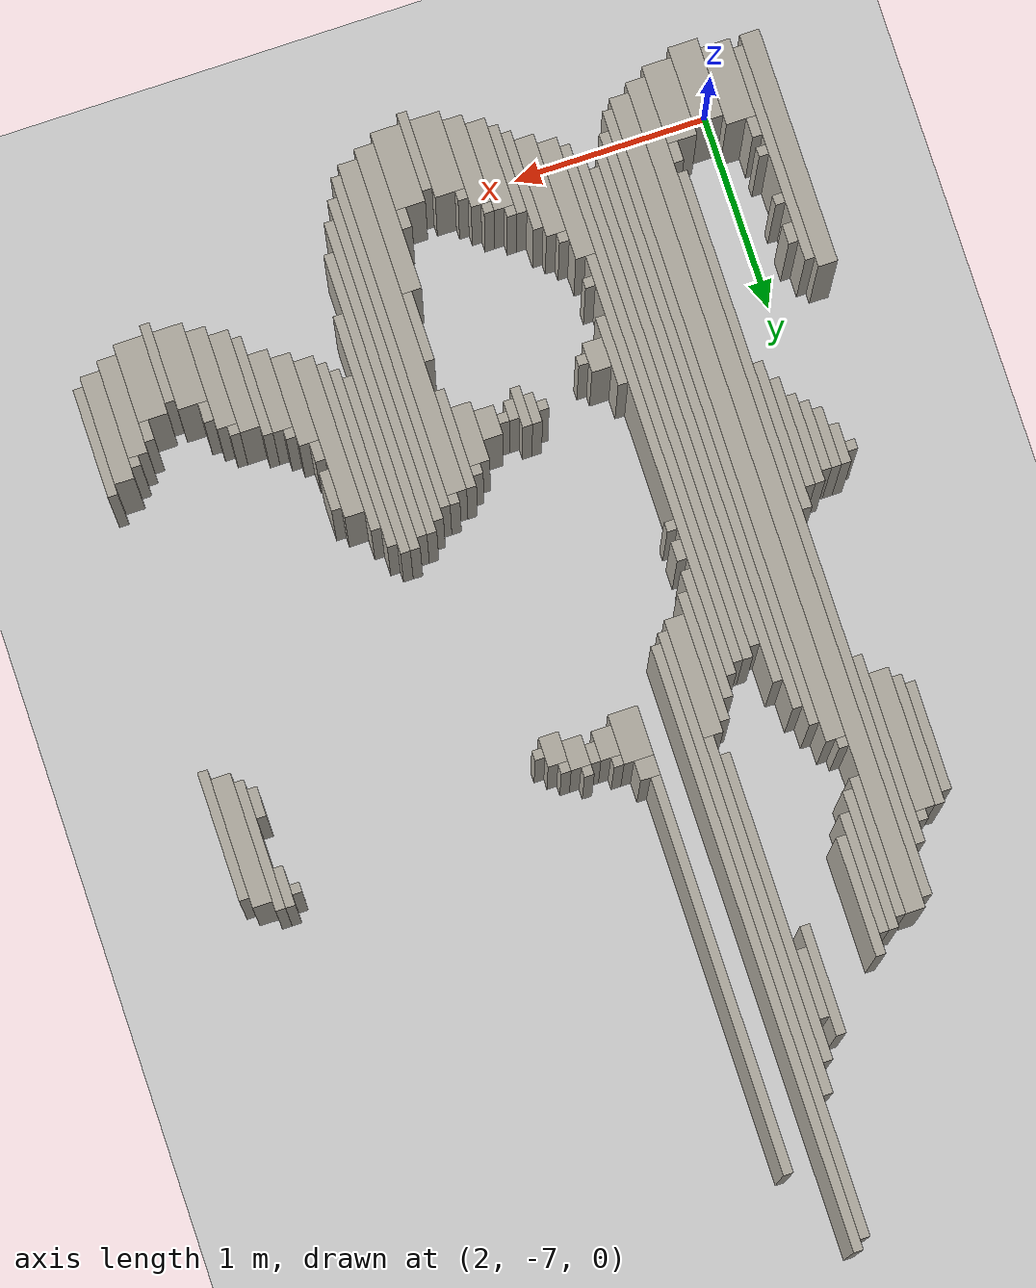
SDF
<sdf version="1.6">
 <world name="fr079_office">
  <include><uri>model://sun</uri></include>
  <include><uri>model://ground_plane</uri></include>
  <model name="fr079_office_walls">
   <static>true</static>
   <link name="w0017">
    <pose>3.477 -7.106 0.500 0 0 0</pose>
    <collision name="c"><geometry><box><size>0.050 0.400 1.000</size></box></geometry></collision>
    <visual name="v">
     <geometry><box><size>0.050 0.400 1.000</size></box></geometry>
     <material><ambient>0.68 0.66 0.62 1</ambient><diffuse>0.68 0.66 0.62 1</diffuse></material>
    </visual>
   </link>
   <link name="w0040">
    <pose>3.377 -7.056 0.500 0 0 0</pose>
    <collision name="c"><geometry><box><size>0.150 0.400 1.000</size></box></geometry></collision>
    <visual name="v">
     <geometry><box><size>0.150 0.400 1.000</size></box></geometry>
     <material><ambient>0.68 0.66 0.62 1</ambient><diffuse>0.68 0.66 0.62 1</diffuse></material>
    </visual>
   </link>
   <link name="w0041">
    <pose>3.577 -7.056 0.500 0 0 0</pose>
    <collision name="c"><geometry><box><size>0.150 0.400 1.000</size></box></geometry></collision>
    <visual name="v">
     <geometry><box><size>0.150 0.400 1.000</size></box></geometry>
     <material><ambient>0.68 0.66 0.62 1</ambient><diffuse>0.68 0.66 0.62 1</diffuse></material>
    </visual>
   </link>
   <link name="w0063">
    <pose>2.077 -7.006 0.500 0 0 0</pose>
    <collision name="c"><geometry><box><size>0.150 0.400 1.000</size></box></geometry></collision>
    <visual name="v">
     <geometry><box><size>0.150 0.400 1.000</size></box></geometry>
     <material><ambient>0.68 0.66 0.62 1</ambient><diffuse>0.68 0.66 0.62 1</diffuse></material>
    </visual>
   </link>
   <link name="w0064">
    <pose>3.252 -6.981 0.500 0 0 0</pose>
    <collision name="c"><geometry><box><size>0.100 0.450 1.000</size></box></geometry></collision>
    <visual name="v">
     <geometry><box><size>0.100 0.450 1.000</size></box></geometry>
     <material><ambient>0.68 0.66 0.62 1</ambient><diffuse>0.68 0.66 0.62 1</diffuse></material>
    </visual>
   </link>
   <link name="w0065">
    <pose>3.702 -6.831 0.500 0 0 0</pose>
    <collision name="c"><geometry><box><size>0.100 0.750 1.000</size></box></geometry></collision>
    <visual name="v">
     <geometry><box><size>0.100 0.750 1.000</size></box></geometry>
     <material><ambient>0.68 0.66 0.62 1</ambient><diffuse>0.68 0.66 0.62 1</diffuse></material>
    </visual>
   </link>
   <link name="w0087">
    <pose>1.752 -6.556 0.500 0 0 0</pose>
    <collision name="c"><geometry><box><size>0.100 1.200 1.000</size></box></geometry></collision>
    <visual name="v">
     <geometry><box><size>0.100 1.200 1.000</size></box></geometry>
     <material><ambient>0.68 0.66 0.62 1</ambient><diffuse>0.68 0.66 0.62 1</diffuse></material>
    </visual>
   </link>
   <link name="w0088">
    <pose>1.927 -6.956 0.500 0 0 0</pose>
    <collision name="c"><geometry><box><size>0.150 0.400 1.000</size></box></geometry></collision>
    <visual name="v">
     <geometry><box><size>0.150 0.400 1.000</size></box></geometry>
     <material><ambient>0.68 0.66 0.62 1</ambient><diffuse>0.68 0.66 0.62 1</diffuse></material>
    </visual>
   </link>
   <link name="w0089">
    <pose>2.227 -6.956 0.500 0 0 0</pose>
    <collision name="c"><geometry><box><size>0.150 0.400 1.000</size></box></geometry></collision>
    <visual name="v">
     <geometry><box><size>0.150 0.400 1.000</size></box></geometry>
     <material><ambient>0.68 0.66 0.62 1</ambient><diffuse>0.68 0.66 0.62 1</diffuse></material>
    </visual>
   </link>
   <link name="w0090">
    <pose>3.152 -6.931 0.500 0 0 0</pose>
    <collision name="c"><geometry><box><size>0.100 0.450 1.000</size></box></geometry></collision>
    <visual name="v">
     <geometry><box><size>0.100 0.450 1.000</size></box></geometry>
     <material><ambient>0.68 0.66 0.62 1</ambient><diffuse>0.68 0.66 0.62 1</diffuse></material>
    </visual>
   </link>
   <link name="w0091">
    <pose>3.802 -6.306 0.500 0 0 0</pose>
    <collision name="c"><geometry><box><size>0.100 1.700 1.000</size></box></geometry></collision>
    <visual name="v">
     <geometry><box><size>0.100 1.700 1.000</size></box></geometry>
     <material><ambient>0.68 0.66 0.62 1</ambient><diffuse>0.68 0.66 0.62 1</diffuse></material>
    </visual>
   </link>
   <link name="w0111">
    <pose>1.827 -6.556 0.500 0 0 0</pose>
    <collision name="c"><geometry><box><size>0.050 1.100 1.000</size></box></geometry></collision>
    <visual name="v">
     <geometry><box><size>0.050 1.100 1.000</size></box></geometry>
     <material><ambient>0.68 0.66 0.62 1</ambient><diffuse>0.68 0.66 0.62 1</diffuse></material>
    </visual>
   </link>
   <link name="w0112">
    <pose>2.352 -4.981 0.500 0 0 0</pose>
    <collision name="c"><geometry><box><size>0.100 4.250 1.000</size></box></geometry></collision>
    <visual name="v">
     <geometry><box><size>0.100 4.250 1.000</size></box></geometry>
     <material><ambient>0.68 0.66 0.62 1</ambient><diffuse>0.68 0.66 0.62 1</diffuse></material>
    </visual>
   </link>
   <link name="w0113">
    <pose>3.077 -6.881 0.500 0 0 0</pose>
    <collision name="c"><geometry><box><size>0.050 0.450 1.000</size></box></geometry></collision>
    <visual name="v">
     <geometry><box><size>0.050 0.450 1.000</size></box></geometry>
     <material><ambient>0.68 0.66 0.62 1</ambient><diffuse>0.68 0.66 0.62 1</diffuse></material>
    </visual>
   </link>
   <link name="w0114">
    <pose>3.877 -6.256 0.500 0 0 0</pose>
    <collision name="c"><geometry><box><size>0.050 1.700 1.000</size></box></geometry></collision>
    <visual name="v">
     <geometry><box><size>0.050 1.700 1.000</size></box></geometry>
     <material><ambient>0.68 0.66 0.62 1</ambient><diffuse>0.68 0.66 0.62 1</diffuse></material>
    </visual>
   </link>
   <link name="w0129">
    <pose>2.452 -5.406 0.500 0 0 0</pose>
    <collision name="c"><geometry><box><size>0.100 3.300 1.000</size></box></geometry></collision>
    <visual name="v">
     <geometry><box><size>0.100 3.300 1.000</size></box></geometry>
     <material><ambient>0.68 0.66 0.62 1</ambient><diffuse>0.68 0.66 0.62 1</diffuse></material>
    </visual>
   </link>
   <link name="w0130">
    <pose>3.027 -6.806 0.500 0 0 0</pose>
    <collision name="c"><geometry><box><size>0.050 0.500 1.000</size></box></geometry></collision>
    <visual name="v">
     <geometry><box><size>0.050 0.500 1.000</size></box></geometry>
     <material><ambient>0.68 0.66 0.62 1</ambient><diffuse>0.68 0.66 0.62 1</diffuse></material>
    </visual>
   </link>
   <link name="w0143">
    <pose>2.527 -5.431 0.500 0 0 0</pose>
    <collision name="c"><geometry><box><size>0.050 3.150 1.000</size></box></geometry></collision>
    <visual name="v">
     <geometry><box><size>0.050 3.150 1.000</size></box></geometry>
     <material><ambient>0.68 0.66 0.62 1</ambient><diffuse>0.68 0.66 0.62 1</diffuse></material>
    </visual>
   </link>
   <link name="w0144">
    <pose>2.952 -6.756 0.500 0 0 0</pose>
    <collision name="c"><geometry><box><size>0.100 0.500 1.000</size></box></geometry></collision>
    <visual name="v">
     <geometry><box><size>0.100 0.500 1.000</size></box></geometry>
     <material><ambient>0.68 0.66 0.62 1</ambient><diffuse>0.68 0.66 0.62 1</diffuse></material>
    </visual>
   </link>
   <link name="w0145">
    <pose>3.927 -6.181 0.500 0 0 0</pose>
    <collision name="c"><geometry><box><size>0.050 1.650 1.000</size></box></geometry></collision>
    <visual name="v">
     <geometry><box><size>0.050 1.650 1.000</size></box></geometry>
     <material><ambient>0.68 0.66 0.62 1</ambient><diffuse>0.68 0.66 0.62 1</diffuse></material>
    </visual>
   </link>
   <link name="w0155">
    <pose>2.852 -6.656 0.500 0 0 0</pose>
    <collision name="c"><geometry><box><size>0.100 0.600 1.000</size></box></geometry></collision>
    <visual name="v">
     <geometry><box><size>0.100 0.600 1.000</size></box></geometry>
     <material><ambient>0.68 0.66 0.62 1</ambient><diffuse>0.68 0.66 0.62 1</diffuse></material>
    </visual>
   </link>
   <link name="w0166">
    <pose>2.577 -5.431 0.500 0 0 0</pose>
    <collision name="c"><geometry><box><size>0.050 2.950 1.000</size></box></geometry></collision>
    <visual name="v">
     <geometry><box><size>0.050 2.950 1.000</size></box></geometry>
     <material><ambient>0.68 0.66 0.62 1</ambient><diffuse>0.68 0.66 0.62 1</diffuse></material>
    </visual>
   </link>
   <link name="w0167">
    <pose>2.777 -5.581 0.500 0 0 0</pose>
    <collision name="c"><geometry><box><size>0.050 2.650 1.000</size></box></geometry></collision>
    <visual name="v">
     <geometry><box><size>0.050 2.650 1.000</size></box></geometry>
     <material><ambient>0.68 0.66 0.62 1</ambient><diffuse>0.68 0.66 0.62 1</diffuse></material>
    </visual>
   </link>
   <link name="w0168">
    <pose>3.977 -6.106 0.500 0 0 0</pose>
    <collision name="c"><geometry><box><size>0.050 1.600 1.000</size></box></geometry></collision>
    <visual name="v">
     <geometry><box><size>0.050 1.600 1.000</size></box></geometry>
     <material><ambient>0.68 0.66 0.62 1</ambient><diffuse>0.68 0.66 0.62 1</diffuse></material>
    </visual>
   </link>
   <link name="w0189">
    <pose>3.327 -6.831 0.500 0 0 0</pose>
    <collision name="c"><geometry><box><size>0.050 0.050 1.000</size></box></geometry></collision>
    <visual name="v">
     <geometry><box><size>0.050 0.050 1.000</size></box></geometry>
     <material><ambient>0.68 0.66 0.62 1</ambient><diffuse>0.68 0.66 0.62 1</diffuse></material>
    </visual>
   </link>
   <link name="w0190">
    <pose>3.627 -6.806 0.500 0 0 0</pose>
    <collision name="c"><geometry><box><size>0.050 0.100 1.000</size></box></geometry></collision>
    <visual name="v">
     <geometry><box><size>0.050 0.100 1.000</size></box></geometry>
     <material><ambient>0.68 0.66 0.62 1</ambient><diffuse>0.68 0.66 0.62 1</diffuse></material>
    </visual>
   </link>
   <link name="w0203">
    <pose>2.627 -5.456 0.500 0 0 0</pose>
    <collision name="c"><geometry><box><size>0.050 2.700 1.000</size></box></geometry></collision>
    <visual name="v">
     <geometry><box><size>0.050 2.700 1.000</size></box></geometry>
     <material><ambient>0.68 0.66 0.62 1</ambient><diffuse>0.68 0.66 0.62 1</diffuse></material>
    </visual>
   </link>
   <link name="w0204">
    <pose>2.727 -5.531 0.500 0 0 0</pose>
    <collision name="c"><geometry><box><size>0.050 2.550 1.000</size></box></geometry></collision>
    <visual name="v">
     <geometry><box><size>0.050 2.550 1.000</size></box></geometry>
     <material><ambient>0.68 0.66 0.62 1</ambient><diffuse>0.68 0.66 0.62 1</diffuse></material>
    </visual>
   </link>
   <link name="w0220">
    <pose>1.877 -6.706 0.500 0 0 0</pose>
    <collision name="c"><geometry><box><size>0.050 0.100 1.000</size></box></geometry></collision>
    <visual name="v">
     <geometry><box><size>0.050 0.100 1.000</size></box></geometry>
     <material><ambient>0.68 0.66 0.62 1</ambient><diffuse>0.68 0.66 0.62 1</diffuse></material>
    </visual>
   </link>
   <link name="w0221">
    <pose>2.277 -6.706 0.500 0 0 0</pose>
    <collision name="c"><geometry><box><size>0.050 0.100 1.000</size></box></geometry></collision>
    <visual name="v">
     <geometry><box><size>0.050 0.100 1.000</size></box></geometry>
     <material><ambient>0.68 0.66 0.62 1</ambient><diffuse>0.68 0.66 0.62 1</diffuse></material>
    </visual>
   </link>
   <link name="w0222">
    <pose>2.677 -5.531 0.500 0 0 0</pose>
    <collision name="c"><geometry><box><size>0.050 2.450 1.000</size></box></geometry></collision>
    <visual name="v">
     <geometry><box><size>0.050 2.450 1.000</size></box></geometry>
     <material><ambient>0.68 0.66 0.62 1</ambient><diffuse>0.68 0.66 0.62 1</diffuse></material>
    </visual>
   </link>
   <link name="w0223">
    <pose>3.227 -6.731 0.500 0 0 0</pose>
    <collision name="c"><geometry><box><size>0.050 0.050 1.000</size></box></geometry></collision>
    <visual name="v">
     <geometry><box><size>0.050 0.050 1.000</size></box></geometry>
     <material><ambient>0.68 0.66 0.62 1</ambient><diffuse>0.68 0.66 0.62 1</diffuse></material>
    </visual>
   </link>
   <link name="w0224">
    <pose>4.027 -6.031 0.500 0 0 0</pose>
    <collision name="c"><geometry><box><size>0.050 1.450 1.000</size></box></geometry></collision>
    <visual name="v">
     <geometry><box><size>0.050 1.450 1.000</size></box></geometry>
     <material><ambient>0.68 0.66 0.62 1</ambient><diffuse>0.68 0.66 0.62 1</diffuse></material>
    </visual>
   </link>
   <link name="w0238">
    <pose>3.127 -6.681 0.500 0 0 0</pose>
    <collision name="c"><geometry><box><size>0.050 0.050 1.000</size></box></geometry></collision>
    <visual name="v">
     <geometry><box><size>0.050 0.050 1.000</size></box></geometry>
     <material><ambient>0.68 0.66 0.62 1</ambient><diffuse>0.68 0.66 0.62 1</diffuse></material>
    </visual>
   </link>
   <link name="w0239">
    <pose>4.977 -6.506 0.500 0 0 0</pose>
    <collision name="c"><geometry><box><size>0.050 0.400 1.000</size></box></geometry></collision>
    <visual name="v">
     <geometry><box><size>0.050 0.400 1.000</size></box></geometry>
     <material><ambient>0.68 0.66 0.62 1</ambient><diffuse>0.68 0.66 0.62 1</diffuse></material>
    </visual>
   </link>
   <link name="w0248">
    <pose>4.877 -6.456 0.500 0 0 0</pose>
    <collision name="c"><geometry><box><size>0.150 0.400 1.000</size></box></geometry></collision>
    <visual name="v">
     <geometry><box><size>0.150 0.400 1.000</size></box></geometry>
     <material><ambient>0.68 0.66 0.62 1</ambient><diffuse>0.68 0.66 0.62 1</diffuse></material>
    </visual>
   </link>
   <link name="w0249">
    <pose>5.077 -6.456 0.500 0 0 0</pose>
    <collision name="c"><geometry><box><size>0.150 0.400 1.000</size></box></geometry></collision>
    <visual name="v">
     <geometry><box><size>0.150 0.400 1.000</size></box></geometry>
     <material><ambient>0.68 0.66 0.62 1</ambient><diffuse>0.68 0.66 0.62 1</diffuse></material>
    </visual>
   </link>
   <link name="w0261">
    <pose>1.877 -6.581 0.500 0 0 0</pose>
    <collision name="c"><geometry><box><size>0.050 0.050 1.000</size></box></geometry></collision>
    <visual name="v">
     <geometry><box><size>0.050 0.050 1.000</size></box></geometry>
     <material><ambient>0.68 0.66 0.62 1</ambient><diffuse>0.68 0.66 0.62 1</diffuse></material>
    </visual>
   </link>
   <link name="w0262">
    <pose>2.277 -4.756 0.500 0 0 0</pose>
    <collision name="c"><geometry><box><size>0.050 3.700 1.000</size></box></geometry></collision>
    <visual name="v">
     <geometry><box><size>0.050 3.700 1.000</size></box></geometry>
     <material><ambient>0.68 0.66 0.62 1</ambient><diffuse>0.68 0.66 0.62 1</diffuse></material>
    </visual>
   </link>
   <link name="w0263">
    <pose>4.752 -6.356 0.500 0 0 0</pose>
    <collision name="c"><geometry><box><size>0.100 0.500 1.000</size></box></geometry></collision>
    <visual name="v">
     <geometry><box><size>0.100 0.500 1.000</size></box></geometry>
     <material><ambient>0.68 0.66 0.62 1</ambient><diffuse>0.68 0.66 0.62 1</diffuse></material>
    </visual>
   </link>
   <link name="w0264">
    <pose>5.202 -6.356 0.500 0 0 0</pose>
    <collision name="c"><geometry><box><size>0.100 0.500 1.000</size></box></geometry></collision>
    <visual name="v">
     <geometry><box><size>0.100 0.500 1.000</size></box></geometry>
     <material><ambient>0.68 0.66 0.62 1</ambient><diffuse>0.68 0.66 0.62 1</diffuse></material>
    </visual>
   </link>
   <link name="w0274">
    <pose>4.652 -6.306 0.500 0 0 0</pose>
    <collision name="c"><geometry><box><size>0.100 0.500 1.000</size></box></geometry></collision>
    <visual name="v">
     <geometry><box><size>0.100 0.500 1.000</size></box></geometry>
     <material><ambient>0.68 0.66 0.62 1</ambient><diffuse>0.68 0.66 0.62 1</diffuse></material>
    </visual>
   </link>
   <link name="w0275">
    <pose>5.302 -6.281 0.500 0 0 0</pose>
    <collision name="c"><geometry><box><size>0.100 0.550 1.000</size></box></geometry></collision>
    <visual name="v">
     <geometry><box><size>0.100 0.550 1.000</size></box></geometry>
     <material><ambient>0.68 0.66 0.62 1</ambient><diffuse>0.68 0.66 0.62 1</diffuse></material>
    </visual>
   </link>
   <link name="w0288">
    <pose>2.927 -6.481 0.500 0 0 0</pose>
    <collision name="c"><geometry><box><size>0.050 0.050 1.000</size></box></geometry></collision>
    <visual name="v">
     <geometry><box><size>0.050 0.050 1.000</size></box></geometry>
     <material><ambient>0.68 0.66 0.62 1</ambient><diffuse>0.68 0.66 0.62 1</diffuse></material>
    </visual>
   </link>
   <link name="w0289">
    <pose>4.577 -6.256 0.500 0 0 0</pose>
    <collision name="c"><geometry><box><size>0.050 0.500 1.000</size></box></geometry></collision>
    <visual name="v">
     <geometry><box><size>0.050 0.500 1.000</size></box></geometry>
     <material><ambient>0.68 0.66 0.62 1</ambient><diffuse>0.68 0.66 0.62 1</diffuse></material>
    </visual>
   </link>
   <link name="w0290">
    <pose>5.377 -6.231 0.500 0 0 0</pose>
    <collision name="c"><geometry><box><size>0.050 0.550 1.000</size></box></geometry></collision>
    <visual name="v">
     <geometry><box><size>0.050 0.550 1.000</size></box></geometry>
     <material><ambient>0.68 0.66 0.62 1</ambient><diffuse>0.68 0.66 0.62 1</diffuse></material>
    </visual>
   </link>
   <link name="w0305">
    <pose>3.727 -6.281 0.500 0 0 0</pose>
    <collision name="c"><geometry><box><size>0.050 0.350 1.000</size></box></geometry></collision>
    <visual name="v">
     <geometry><box><size>0.050 0.350 1.000</size></box></geometry>
     <material><ambient>0.68 0.66 0.62 1</ambient><diffuse>0.68 0.66 0.62 1</diffuse></material>
    </visual>
   </link>
   <link name="w0306">
    <pose>4.077 -5.856 0.500 0 0 0</pose>
    <collision name="c"><geometry><box><size>0.050 1.200 1.000</size></box></geometry></collision>
    <visual name="v">
     <geometry><box><size>0.050 1.200 1.000</size></box></geometry>
     <material><ambient>0.68 0.66 0.62 1</ambient><diffuse>0.68 0.66 0.62 1</diffuse></material>
    </visual>
   </link>
   <link name="w0325">
    <pose>4.502 -6.206 0.500 0 0 0</pose>
    <collision name="c"><geometry><box><size>0.100 0.400 1.000</size></box></geometry></collision>
    <visual name="v">
     <geometry><box><size>0.100 0.400 1.000</size></box></geometry>
     <material><ambient>0.68 0.66 0.62 1</ambient><diffuse>0.68 0.66 0.62 1</diffuse></material>
    </visual>
   </link>
   <link name="w0340">
    <pose>1.877 -6.331 0.500 0 0 0</pose>
    <collision name="c"><geometry><box><size>0.050 0.050 1.000</size></box></geometry></collision>
    <visual name="v">
     <geometry><box><size>0.050 0.050 1.000</size></box></geometry>
     <material><ambient>0.68 0.66 0.62 1</ambient><diffuse>0.68 0.66 0.62 1</diffuse></material>
    </visual>
   </link>
   <link name="w0341">
    <pose>2.827 -5.281 0.500 0 0 0</pose>
    <collision name="c"><geometry><box><size>0.050 2.150 1.000</size></box></geometry></collision>
    <visual name="v">
     <geometry><box><size>0.050 2.150 1.000</size></box></geometry>
     <material><ambient>0.68 0.66 0.62 1</ambient><diffuse>0.68 0.66 0.62 1</diffuse></material>
    </visual>
   </link>
   <link name="w0342">
    <pose>4.402 -6.131 0.500 0 0 0</pose>
    <collision name="c"><geometry><box><size>0.100 0.450 1.000</size></box></geometry></collision>
    <visual name="v">
     <geometry><box><size>0.100 0.450 1.000</size></box></geometry>
     <material><ambient>0.68 0.66 0.62 1</ambient><diffuse>0.68 0.66 0.62 1</diffuse></material>
    </visual>
   </link>
   <link name="w0356">
    <pose>4.302 -5.906 0.500 0 0 0</pose>
    <collision name="c"><geometry><box><size>0.100 0.800 1.000</size></box></geometry></collision>
    <visual name="v">
     <geometry><box><size>0.100 0.800 1.000</size></box></geometry>
     <material><ambient>0.68 0.66 0.62 1</ambient><diffuse>0.68 0.66 0.62 1</diffuse></material>
    </visual>
   </link>
   <link name="w0366">
    <pose>2.877 -6.231 0.500 0 0 0</pose>
    <collision name="c"><geometry><box><size>0.050 0.050 1.000</size></box></geometry></collision>
    <visual name="v">
     <geometry><box><size>0.050 0.050 1.000</size></box></geometry>
     <material><ambient>0.68 0.66 0.62 1</ambient><diffuse>0.68 0.66 0.62 1</diffuse></material>
    </visual>
   </link>
   <link name="w0367">
    <pose>4.227 -5.831 0.500 0 0 0</pose>
    <collision name="c"><geometry><box><size>0.050 0.850 1.000</size></box></geometry></collision>
    <visual name="v">
     <geometry><box><size>0.050 0.850 1.000</size></box></geometry>
     <material><ambient>0.68 0.66 0.62 1</ambient><diffuse>0.68 0.66 0.62 1</diffuse></material>
    </visual>
   </link>
   <link name="w0368">
    <pose>4.827 -6.206 0.500 0 0 0</pose>
    <collision name="c"><geometry><box><size>0.050 0.100 1.000</size></box></geometry></collision>
    <visual name="v">
     <geometry><box><size>0.050 0.100 1.000</size></box></geometry>
     <material><ambient>0.68 0.66 0.62 1</ambient><diffuse>0.68 0.66 0.62 1</diffuse></material>
    </visual>
   </link>
   <link name="w0369">
    <pose>5.127 -6.206 0.500 0 0 0</pose>
    <collision name="c"><geometry><box><size>0.050 0.100 1.000</size></box></geometry></collision>
    <visual name="v">
     <geometry><box><size>0.050 0.100 1.000</size></box></geometry>
     <material><ambient>0.68 0.66 0.62 1</ambient><diffuse>0.68 0.66 0.62 1</diffuse></material>
    </visual>
   </link>
   <link name="w0379">
    <pose>1.877 -6.156 0.500 0 0 0</pose>
    <collision name="c"><geometry><box><size>0.050 0.100 1.000</size></box></geometry></collision>
    <visual name="v">
     <geometry><box><size>0.050 0.100 1.000</size></box></geometry>
     <material><ambient>0.68 0.66 0.62 1</ambient><diffuse>0.68 0.66 0.62 1</diffuse></material>
    </visual>
   </link>
   <link name="w0380">
    <pose>4.177 -5.756 0.500 0 0 0</pose>
    <collision name="c"><geometry><box><size>0.050 0.900 1.000</size></box></geometry></collision>
    <visual name="v">
     <geometry><box><size>0.050 0.900 1.000</size></box></geometry>
     <material><ambient>0.68 0.66 0.62 1</ambient><diffuse>0.68 0.66 0.62 1</diffuse></material>
    </visual>
   </link>
   <link name="w0387">
    <pose>4.127 -5.706 0.500 0 0 0</pose>
    <collision name="c"><geometry><box><size>0.050 0.900 1.000</size></box></geometry></collision>
    <visual name="v">
     <geometry><box><size>0.050 0.900 1.000</size></box></geometry>
     <material><ambient>0.68 0.66 0.62 1</ambient><diffuse>0.68 0.66 0.62 1</diffuse></material>
    </visual>
   </link>
   <link name="w0398">
    <pose>4.727 -6.081 0.500 0 0 0</pose>
    <collision name="c"><geometry><box><size>0.050 0.050 1.000</size></box></geometry></collision>
    <visual name="v">
     <geometry><box><size>0.050 0.050 1.000</size></box></geometry>
     <material><ambient>0.68 0.66 0.62 1</ambient><diffuse>0.68 0.66 0.62 1</diffuse></material>
    </visual>
   </link>
   <link name="w0399">
    <pose>5.227 -6.081 0.500 0 0 0</pose>
    <collision name="c"><geometry><box><size>0.050 0.050 1.000</size></box></geometry></collision>
    <visual name="v">
     <geometry><box><size>0.050 0.050 1.000</size></box></geometry>
     <material><ambient>0.68 0.66 0.62 1</ambient><diffuse>0.68 0.66 0.62 1</diffuse></material>
    </visual>
   </link>
   <link name="w0413">
    <pose>2.877 -5.881 0.500 0 0 0</pose>
    <collision name="c"><geometry><box><size>0.050 0.350 1.000</size></box></geometry></collision>
    <visual name="v">
     <geometry><box><size>0.050 0.350 1.000</size></box></geometry>
     <material><ambient>0.68 0.66 0.62 1</ambient><diffuse>0.68 0.66 0.62 1</diffuse></material>
    </visual>
   </link>
   <link name="w0425">
    <pose>4.477 -5.981 0.500 0 0 0</pose>
    <collision name="c"><geometry><box><size>0.050 0.050 1.000</size></box></geometry></collision>
    <visual name="v">
     <geometry><box><size>0.050 0.050 1.000</size></box></geometry>
     <material><ambient>0.68 0.66 0.62 1</ambient><diffuse>0.68 0.66 0.62 1</diffuse></material>
    </visual>
   </link>
   <link name="w0439">
    <pose>2.952 -5.881 0.500 0 0 0</pose>
    <collision name="c"><geometry><box><size>0.100 0.150 1.000</size></box></geometry></collision>
    <visual name="v">
     <geometry><box><size>0.100 0.150 1.000</size></box></geometry>
     <material><ambient>0.68 0.66 0.62 1</ambient><diffuse>0.68 0.66 0.62 1</diffuse></material>
    </visual>
   </link>
   <link name="w0440">
    <pose>3.727 -5.706 0.500 0 0 0</pose>
    <collision name="c"><geometry><box><size>0.050 0.500 1.000</size></box></geometry></collision>
    <visual name="v">
     <geometry><box><size>0.050 0.500 1.000</size></box></geometry>
     <material><ambient>0.68 0.66 0.62 1</ambient><diffuse>0.68 0.66 0.62 1</diffuse></material>
    </visual>
   </link>
   <link name="w0456">
    <pose>3.027 -5.881 0.500 0 0 0</pose>
    <collision name="c"><geometry><box><size>0.050 0.050 1.000</size></box></geometry></collision>
    <visual name="v">
     <geometry><box><size>0.050 0.050 1.000</size></box></geometry>
     <material><ambient>0.68 0.66 0.62 1</ambient><diffuse>0.68 0.66 0.62 1</diffuse></material>
    </visual>
   </link>
   <link name="w0457">
    <pose>4.377 -5.856 0.500 0 0 0</pose>
    <collision name="c"><geometry><box><size>0.050 0.100 1.000</size></box></geometry></collision>
    <visual name="v">
     <geometry><box><size>0.050 0.100 1.000</size></box></geometry>
     <material><ambient>0.68 0.66 0.62 1</ambient><diffuse>0.68 0.66 0.62 1</diffuse></material>
    </visual>
   </link>
   <link name="w0470">
    <pose>3.377 -5.756 0.500 0 0 0</pose>
    <collision name="c"><geometry><box><size>0.050 0.200 1.000</size></box></geometry></collision>
    <visual name="v">
     <geometry><box><size>0.050 0.200 1.000</size></box></geometry>
     <material><ambient>0.68 0.66 0.62 1</ambient><diffuse>0.68 0.66 0.62 1</diffuse></material>
    </visual>
   </link>
   <link name="w0471">
    <pose>3.652 -5.706 0.500 0 0 0</pose>
    <collision name="c"><geometry><box><size>0.100 0.300 1.000</size></box></geometry></collision>
    <visual name="v">
     <geometry><box><size>0.100 0.300 1.000</size></box></geometry>
     <material><ambient>0.68 0.66 0.62 1</ambient><diffuse>0.68 0.66 0.62 1</diffuse></material>
    </visual>
   </link>
   <link name="w0484">
    <pose>3.327 -5.731 0.500 0 0 0</pose>
    <collision name="c"><geometry><box><size>0.050 0.150 1.000</size></box></geometry></collision>
    <visual name="v">
     <geometry><box><size>0.050 0.150 1.000</size></box></geometry>
     <material><ambient>0.68 0.66 0.62 1</ambient><diffuse>0.68 0.66 0.62 1</diffuse></material>
    </visual>
   </link>
   <link name="w0485">
    <pose>3.427 -5.756 0.500 0 0 0</pose>
    <collision name="c"><geometry><box><size>0.050 0.100 1.000</size></box></geometry></collision>
    <visual name="v">
     <geometry><box><size>0.050 0.100 1.000</size></box></geometry>
     <material><ambient>0.68 0.66 0.62 1</ambient><diffuse>0.68 0.66 0.62 1</diffuse></material>
    </visual>
   </link>
   <link name="w0486">
    <pose>3.552 -5.731 0.500 0 0 0</pose>
    <collision name="c"><geometry><box><size>0.100 0.150 1.000</size></box></geometry></collision>
    <visual name="v">
     <geometry><box><size>0.100 0.150 1.000</size></box></geometry>
     <material><ambient>0.68 0.66 0.62 1</ambient><diffuse>0.68 0.66 0.62 1</diffuse></material>
    </visual>
   </link>
   <link name="w0499">
    <pose>3.277 -5.731 0.500 0 0 0</pose>
    <collision name="c"><geometry><box><size>0.050 0.050 1.000</size></box></geometry></collision>
    <visual name="v">
     <geometry><box><size>0.050 0.050 1.000</size></box></geometry>
     <material><ambient>0.68 0.66 0.62 1</ambient><diffuse>0.68 0.66 0.62 1</diffuse></material>
    </visual>
   </link>
   <link name="w0500">
    <pose>3.477 -5.731 0.500 0 0 0</pose>
    <collision name="c"><geometry><box><size>0.050 0.050 1.000</size></box></geometry></collision>
    <visual name="v">
     <geometry><box><size>0.050 0.050 1.000</size></box></geometry>
     <material><ambient>0.68 0.66 0.62 1</ambient><diffuse>0.68 0.66 0.62 1</diffuse></material>
    </visual>
   </link>
   <link name="w0501">
    <pose>4.377 -5.656 0.500 0 0 0</pose>
    <collision name="c"><geometry><box><size>0.050 0.200 1.000</size></box></geometry></collision>
    <visual name="v">
     <geometry><box><size>0.050 0.200 1.000</size></box></geometry>
     <material><ambient>0.68 0.66 0.62 1</ambient><diffuse>0.68 0.66 0.62 1</diffuse></material>
    </visual>
   </link>
   <link name="w0535">
    <pose>2.227 -5.231 0.500 0 0 0</pose>
    <collision name="c"><geometry><box><size>0.050 0.750 1.000</size></box></geometry></collision>
    <visual name="v">
     <geometry><box><size>0.050 0.750 1.000</size></box></geometry>
     <material><ambient>0.68 0.66 0.62 1</ambient><diffuse>0.68 0.66 0.62 1</diffuse></material>
    </visual>
   </link>
   <link name="w0547">
    <pose>3.677 -5.531 0.500 0 0 0</pose>
    <collision name="c"><geometry><box><size>0.050 0.050 1.000</size></box></geometry></collision>
    <visual name="v">
     <geometry><box><size>0.050 0.050 1.000</size></box></geometry>
     <material><ambient>0.68 0.66 0.62 1</ambient><diffuse>0.68 0.66 0.62 1</diffuse></material>
    </visual>
   </link>
   <link name="w0559">
    <pose>2.177 -5.231 0.500 0 0 0</pose>
    <collision name="c"><geometry><box><size>0.050 0.550 1.000</size></box></geometry></collision>
    <visual name="v">
     <geometry><box><size>0.050 0.550 1.000</size></box></geometry>
     <material><ambient>0.68 0.66 0.62 1</ambient><diffuse>0.68 0.66 0.62 1</diffuse></material>
    </visual>
   </link>
   <link name="w0567">
    <pose>3.827 -5.431 0.500 0 0 0</pose>
    <collision name="c"><geometry><box><size>0.050 0.050 1.000</size></box></geometry></collision>
    <visual name="v">
     <geometry><box><size>0.050 0.050 1.000</size></box></geometry>
     <material><ambient>0.68 0.66 0.62 1</ambient><diffuse>0.68 0.66 0.62 1</diffuse></material>
    </visual>
   </link>
   <link name="w0580">
    <pose>2.127 -5.181 0.500 0 0 0</pose>
    <collision name="c"><geometry><box><size>0.050 0.450 1.000</size></box></geometry></collision>
    <visual name="v">
     <geometry><box><size>0.050 0.450 1.000</size></box></geometry>
     <material><ambient>0.68 0.66 0.62 1</ambient><diffuse>0.68 0.66 0.62 1</diffuse></material>
    </visual>
   </link>
   <link name="w0592">
    <pose>2.077 -5.181 0.500 0 0 0</pose>
    <collision name="c"><geometry><box><size>0.050 0.350 1.000</size></box></geometry></collision>
    <visual name="v">
     <geometry><box><size>0.050 0.350 1.000</size></box></geometry>
     <material><ambient>0.68 0.66 0.62 1</ambient><diffuse>0.68 0.66 0.62 1</diffuse></material>
    </visual>
   </link>
   <link name="w0607">
    <pose>2.027 -5.156 0.500 0 0 0</pose>
    <collision name="c"><geometry><box><size>0.050 0.300 1.000</size></box></geometry></collision>
    <visual name="v">
     <geometry><box><size>0.050 0.300 1.000</size></box></geometry>
     <material><ambient>0.68 0.66 0.62 1</ambient><diffuse>0.68 0.66 0.62 1</diffuse></material>
    </visual>
   </link>
   <link name="w0640">
    <pose>1.977 -5.106 0.500 0 0 0</pose>
    <collision name="c"><geometry><box><size>0.050 0.200 1.000</size></box></geometry></collision>
    <visual name="v">
     <geometry><box><size>0.050 0.200 1.000</size></box></geometry>
     <material><ambient>0.68 0.66 0.62 1</ambient><diffuse>0.68 0.66 0.62 1</diffuse></material>
    </visual>
   </link>
   <link name="w0664">
    <pose>1.927 -5.081 0.500 0 0 0</pose>
    <collision name="c"><geometry><box><size>0.050 0.050 1.000</size></box></geometry></collision>
    <visual name="v">
     <geometry><box><size>0.050 0.050 1.000</size></box></geometry>
     <material><ambient>0.68 0.66 0.62 1</ambient><diffuse>0.68 0.66 0.62 1</diffuse></material>
    </visual>
   </link>
   <link name="w0685">
    <pose>2.877 -4.981 0.500 0 0 0</pose>
    <collision name="c"><geometry><box><size>0.050 0.050 1.000</size></box></geometry></collision>
    <visual name="v">
     <geometry><box><size>0.050 0.050 1.000</size></box></geometry>
     <material><ambient>0.68 0.66 0.62 1</ambient><diffuse>0.68 0.66 0.62 1</diffuse></material>
    </visual>
   </link>
   <link name="w0706">
    <pose>2.877 -4.856 0.500 0 0 0</pose>
    <collision name="c"><geometry><box><size>0.050 0.100 1.000</size></box></geometry></collision>
    <visual name="v">
     <geometry><box><size>0.050 0.100 1.000</size></box></geometry>
     <material><ambient>0.68 0.66 0.62 1</ambient><diffuse>0.68 0.66 0.62 1</diffuse></material>
    </visual>
   </link>
   <link name="w0744">
    <pose>2.877 -4.431 0.500 0 0 0</pose>
    <collision name="c"><geometry><box><size>0.050 0.650 1.000</size></box></geometry></collision>
    <visual name="v">
     <geometry><box><size>0.050 0.650 1.000</size></box></geometry>
     <material><ambient>0.68 0.66 0.62 1</ambient><diffuse>0.68 0.66 0.62 1</diffuse></material>
    </visual>
   </link>
   <link name="w0774">
    <pose>2.927 -4.331 0.500 0 0 0</pose>
    <collision name="c"><geometry><box><size>0.050 0.650 1.000</size></box></geometry></collision>
    <visual name="v">
     <geometry><box><size>0.050 0.650 1.000</size></box></geometry>
     <material><ambient>0.68 0.66 0.62 1</ambient><diffuse>0.68 0.66 0.62 1</diffuse></material>
    </visual>
   </link>
   <link name="w0809">
    <pose>3.002 -4.256 0.500 0 0 0</pose>
    <collision name="c"><geometry><box><size>0.100 0.600 1.000</size></box></geometry></collision>
    <visual name="v">
     <geometry><box><size>0.100 0.600 1.000</size></box></geometry>
     <material><ambient>0.68 0.66 0.62 1</ambient><diffuse>0.68 0.66 0.62 1</diffuse></material>
    </visual>
   </link>
   <link name="w0810">
    <pose>5.377 -4.231 0.500 0 0 0</pose>
    <collision name="c"><geometry><box><size>0.050 0.650 1.000</size></box></geometry></collision>
    <visual name="v">
     <geometry><box><size>0.050 0.650 1.000</size></box></geometry>
     <material><ambient>0.68 0.66 0.62 1</ambient><diffuse>0.68 0.66 0.62 1</diffuse></material>
    </visual>
   </link>
   <link name="w0823">
    <pose>3.077 -2.981 0.500 0 0 0</pose>
    <collision name="c"><geometry><box><size>0.050 3.050 1.000</size></box></geometry></collision>
    <visual name="v">
     <geometry><box><size>0.050 3.050 1.000</size></box></geometry>
     <material><ambient>0.68 0.66 0.62 1</ambient><diffuse>0.68 0.66 0.62 1</diffuse></material>
    </visual>
   </link>
   <link name="w0824">
    <pose>5.302 -4.181 0.500 0 0 0</pose>
    <collision name="c"><geometry><box><size>0.100 0.650 1.000</size></box></geometry></collision>
    <visual name="v">
     <geometry><box><size>0.100 0.650 1.000</size></box></geometry>
     <material><ambient>0.68 0.66 0.62 1</ambient><diffuse>0.68 0.66 0.62 1</diffuse></material>
    </visual>
   </link>
   <link name="w0839">
    <pose>3.127 -2.931 0.500 0 0 0</pose>
    <collision name="c"><geometry><box><size>0.050 3.050 1.000</size></box></geometry></collision>
    <visual name="v">
     <geometry><box><size>0.050 3.050 1.000</size></box></geometry>
     <material><ambient>0.68 0.66 0.62 1</ambient><diffuse>0.68 0.66 0.62 1</diffuse></material>
    </visual>
   </link>
   <link name="w0840">
    <pose>5.227 -4.131 0.500 0 0 0</pose>
    <collision name="c"><geometry><box><size>0.050 0.650 1.000</size></box></geometry></collision>
    <visual name="v">
     <geometry><box><size>0.050 0.650 1.000</size></box></geometry>
     <material><ambient>0.68 0.66 0.62 1</ambient><diffuse>0.68 0.66 0.62 1</diffuse></material>
    </visual>
   </link>
   <link name="w0853">
    <pose>5.177 -4.331 0.500 0 0 0</pose>
    <collision name="c"><geometry><box><size>0.050 0.150 1.000</size></box></geometry></collision>
    <visual name="v">
     <geometry><box><size>0.050 0.150 1.000</size></box></geometry>
     <material><ambient>0.68 0.66 0.62 1</ambient><diffuse>0.68 0.66 0.62 1</diffuse></material>
    </visual>
   </link>
   <link name="w0912">
    <pose>3.377 -4.081 0.500 0 0 0</pose>
    <collision name="c"><geometry><box><size>0.150 0.250 1.000</size></box></geometry></collision>
    <visual name="v">
     <geometry><box><size>0.150 0.250 1.000</size></box></geometry>
     <material><ambient>0.68 0.66 0.62 1</ambient><diffuse>0.68 0.66 0.62 1</diffuse></material>
    </visual>
   </link>
   <link name="w0913">
    <pose>3.752 -4.131 0.500 0 0 0</pose>
    <collision name="c"><geometry><box><size>0.100 0.150 1.000</size></box></geometry></collision>
    <visual name="v">
     <geometry><box><size>0.100 0.150 1.000</size></box></geometry>
     <material><ambient>0.68 0.66 0.62 1</ambient><diffuse>0.68 0.66 0.62 1</diffuse></material>
    </visual>
   </link>
   <link name="w0931">
    <pose>3.502 -4.081 0.500 0 0 0</pose>
    <collision name="c"><geometry><box><size>0.100 0.150 1.000</size></box></geometry></collision>
    <visual name="v">
     <geometry><box><size>0.100 0.150 1.000</size></box></geometry>
     <material><ambient>0.68 0.66 0.62 1</ambient><diffuse>0.68 0.66 0.62 1</diffuse></material>
    </visual>
   </link>
   <link name="w0932">
    <pose>3.652 -4.081 0.500 0 0 0</pose>
    <collision name="c"><geometry><box><size>0.100 0.150 1.000</size></box></geometry></collision>
    <visual name="v">
     <geometry><box><size>0.100 0.150 1.000</size></box></geometry>
     <material><ambient>0.68 0.66 0.62 1</ambient><diffuse>0.68 0.66 0.62 1</diffuse></material>
    </visual>
   </link>
   <link name="w0933">
    <pose>3.827 -4.131 0.500 0 0 0</pose>
    <collision name="c"><geometry><box><size>0.050 0.050 1.000</size></box></geometry></collision>
    <visual name="v">
     <geometry><box><size>0.050 0.050 1.000</size></box></geometry>
     <material><ambient>0.68 0.66 0.62 1</ambient><diffuse>0.68 0.66 0.62 1</diffuse></material>
    </visual>
   </link>
   <link name="w0946">
    <pose>2.227 -3.631 0.500 0 0 0</pose>
    <collision name="c"><geometry><box><size>0.050 0.950 1.000</size></box></geometry></collision>
    <visual name="v">
     <geometry><box><size>0.050 0.950 1.000</size></box></geometry>
     <material><ambient>0.68 0.66 0.62 1</ambient><diffuse>0.68 0.66 0.62 1</diffuse></material>
    </visual>
   </link>
   <link name="w0947">
    <pose>3.577 -4.056 0.500 0 0 0</pose>
    <collision name="c"><geometry><box><size>0.050 0.100 1.000</size></box></geometry></collision>
    <visual name="v">
     <geometry><box><size>0.050 0.100 1.000</size></box></geometry>
     <material><ambient>0.68 0.66 0.62 1</ambient><diffuse>0.68 0.66 0.62 1</diffuse></material>
    </visual>
   </link>
   <link name="w0957">
    <pose>3.727 -4.031 0.500 0 0 0</pose>
    <collision name="c"><geometry><box><size>0.050 0.050 1.000</size></box></geometry></collision>
    <visual name="v">
     <geometry><box><size>0.050 0.050 1.000</size></box></geometry>
     <material><ambient>0.68 0.66 0.62 1</ambient><diffuse>0.68 0.66 0.62 1</diffuse></material>
    </visual>
   </link>
   <link name="w0968">
    <pose>2.152 -3.656 0.500 0 0 0</pose>
    <collision name="c"><geometry><box><size>0.100 0.700 1.000</size></box></geometry></collision>
    <visual name="v">
     <geometry><box><size>0.100 0.700 1.000</size></box></geometry>
     <material><ambient>0.68 0.66 0.62 1</ambient><diffuse>0.68 0.66 0.62 1</diffuse></material>
    </visual>
   </link>
   <link name="w0969">
    <pose>3.477 -3.981 0.500 0 0 0</pose>
    <collision name="c"><geometry><box><size>0.050 0.050 1.000</size></box></geometry></collision>
    <visual name="v">
     <geometry><box><size>0.050 0.050 1.000</size></box></geometry>
     <material><ambient>0.68 0.66 0.62 1</ambient><diffuse>0.68 0.66 0.62 1</diffuse></material>
    </visual>
   </link>
   <link name="w0970">
    <pose>3.627 -3.981 0.500 0 0 0</pose>
    <collision name="c"><geometry><box><size>0.050 0.050 1.000</size></box></geometry></collision>
    <visual name="v">
     <geometry><box><size>0.050 0.050 1.000</size></box></geometry>
     <material><ambient>0.68 0.66 0.62 1</ambient><diffuse>0.68 0.66 0.62 1</diffuse></material>
    </visual>
   </link>
   <link name="w0971">
    <pose>5.177 -3.906 0.500 0 0 0</pose>
    <collision name="c"><geometry><box><size>0.050 0.200 1.000</size></box></geometry></collision>
    <visual name="v">
     <geometry><box><size>0.050 0.200 1.000</size></box></geometry>
     <material><ambient>0.68 0.66 0.62 1</ambient><diffuse>0.68 0.66 0.62 1</diffuse></material>
    </visual>
   </link>
   <link name="w0982">
    <pose>2.077 -3.631 0.500 0 0 0</pose>
    <collision name="c"><geometry><box><size>0.050 0.650 1.000</size></box></geometry></collision>
    <visual name="v">
     <geometry><box><size>0.050 0.650 1.000</size></box></geometry>
     <material><ambient>0.68 0.66 0.62 1</ambient><diffuse>0.68 0.66 0.62 1</diffuse></material>
    </visual>
   </link>
   <link name="w0983">
    <pose>3.027 -3.056 0.500 0 0 0</pose>
    <collision name="c"><geometry><box><size>0.050 1.800 1.000</size></box></geometry></collision>
    <visual name="v">
     <geometry><box><size>0.050 1.800 1.000</size></box></geometry>
     <material><ambient>0.68 0.66 0.62 1</ambient><diffuse>0.68 0.66 0.62 1</diffuse></material>
    </visual>
   </link>
   <link name="w0984">
    <pose>3.352 -3.906 0.500 0 0 0</pose>
    <collision name="c"><geometry><box><size>0.100 0.100 1.000</size></box></geometry></collision>
    <visual name="v">
     <geometry><box><size>0.100 0.100 1.000</size></box></geometry>
     <material><ambient>0.68 0.66 0.62 1</ambient><diffuse>0.68 0.66 0.62 1</diffuse></material>
    </visual>
   </link>
   <link name="w0998">
    <pose>2.027 -3.631 0.500 0 0 0</pose>
    <collision name="c"><geometry><box><size>0.050 0.550 1.000</size></box></geometry></collision>
    <visual name="v">
     <geometry><box><size>0.050 0.550 1.000</size></box></geometry>
     <material><ambient>0.68 0.66 0.62 1</ambient><diffuse>0.68 0.66 0.62 1</diffuse></material>
    </visual>
   </link>
   <link name="w0999">
    <pose>5.127 -3.881 0.500 0 0 0</pose>
    <collision name="c"><geometry><box><size>0.050 0.050 1.000</size></box></geometry></collision>
    <visual name="v">
     <geometry><box><size>0.050 0.050 1.000</size></box></geometry>
     <material><ambient>0.68 0.66 0.62 1</ambient><diffuse>0.68 0.66 0.62 1</diffuse></material>
    </visual>
   </link>
   <link name="w1008">
    <pose>2.977 -3.081 0.500 0 0 0</pose>
    <collision name="c"><geometry><box><size>0.050 1.550 1.000</size></box></geometry></collision>
    <visual name="v">
     <geometry><box><size>0.050 1.550 1.000</size></box></geometry>
     <material><ambient>0.68 0.66 0.62 1</ambient><diffuse>0.68 0.66 0.62 1</diffuse></material>
    </visual>
   </link>
   <link name="w1009">
    <pose>3.327 -2.856 0.500 0 0 0</pose>
    <collision name="c"><geometry><box><size>0.050 2.000 1.000</size></box></geometry></collision>
    <visual name="v">
     <geometry><box><size>0.050 2.000 1.000</size></box></geometry>
     <material><ambient>0.68 0.66 0.62 1</ambient><diffuse>0.68 0.66 0.62 1</diffuse></material>
    </visual>
   </link>
   <link name="w1036">
    <pose>2.427 -3.731 0.500 0 0 0</pose>
    <collision name="c"><geometry><box><size>0.050 0.050 1.000</size></box></geometry></collision>
    <visual name="v">
     <geometry><box><size>0.050 0.050 1.000</size></box></geometry>
     <material><ambient>0.68 0.66 0.62 1</ambient><diffuse>0.68 0.66 0.62 1</diffuse></material>
    </visual>
   </link>
   <link name="w1078">
    <pose>2.427 -3.206 0.500 0 0 0</pose>
    <collision name="c"><geometry><box><size>0.050 0.700 1.000</size></box></geometry></collision>
    <visual name="v">
     <geometry><box><size>0.050 0.700 1.000</size></box></geometry>
     <material><ambient>0.68 0.66 0.62 1</ambient><diffuse>0.68 0.66 0.62 1</diffuse></material>
    </visual>
   </link>
   <link name="w1085">
    <pose>2.477 -3.156 0.500 0 0 0</pose>
    <collision name="c"><geometry><box><size>0.050 0.700 1.000</size></box></geometry></collision>
    <visual name="v">
     <geometry><box><size>0.050 0.700 1.000</size></box></geometry>
     <material><ambient>0.68 0.66 0.62 1</ambient><diffuse>0.68 0.66 0.62 1</diffuse></material>
    </visual>
   </link>
   <link name="w1098">
    <pose>2.527 -3.106 0.500 0 0 0</pose>
    <collision name="c"><geometry><box><size>0.050 0.600 1.000</size></box></geometry></collision>
    <visual name="v">
     <geometry><box><size>0.050 0.600 1.000</size></box></geometry>
     <material><ambient>0.68 0.66 0.62 1</ambient><diffuse>0.68 0.66 0.62 1</diffuse></material>
    </visual>
   </link>
   <link name="w1111">
    <pose>2.177 -3.281 0.500 0 0 0</pose>
    <collision name="c"><geometry><box><size>0.050 0.050 1.000</size></box></geometry></collision>
    <visual name="v">
     <geometry><box><size>0.050 0.050 1.000</size></box></geometry>
     <material><ambient>0.68 0.66 0.62 1</ambient><diffuse>0.68 0.66 0.62 1</diffuse></material>
    </visual>
   </link>
   <link name="w1112">
    <pose>2.577 -3.006 0.500 0 0 0</pose>
    <collision name="c"><geometry><box><size>0.050 0.600 1.000</size></box></geometry></collision>
    <visual name="v">
     <geometry><box><size>0.050 0.600 1.000</size></box></geometry>
     <material><ambient>0.68 0.66 0.62 1</ambient><diffuse>0.68 0.66 0.62 1</diffuse></material>
    </visual>
   </link>
   <link name="w1163">
    <pose>2.877 -2.681 0.500 0 0 0</pose>
    <collision name="c"><geometry><box><size>0.050 0.550 1.000</size></box></geometry></collision>
    <visual name="v">
     <geometry><box><size>0.050 0.550 1.000</size></box></geometry>
     <material><ambient>0.68 0.66 0.62 1</ambient><diffuse>0.68 0.66 0.62 1</diffuse></material>
    </visual>
   </link>
   <link name="w1193">
    <pose>2.927 -2.681 0.500 0 0 0</pose>
    <collision name="c"><geometry><box><size>0.050 0.350 1.000</size></box></geometry></collision>
    <visual name="v">
     <geometry><box><size>0.050 0.350 1.000</size></box></geometry>
     <material><ambient>0.68 0.66 0.62 1</ambient><diffuse>0.68 0.66 0.62 1</diffuse></material>
    </visual>
   </link>
  </model>
 </world>
</sdf>
